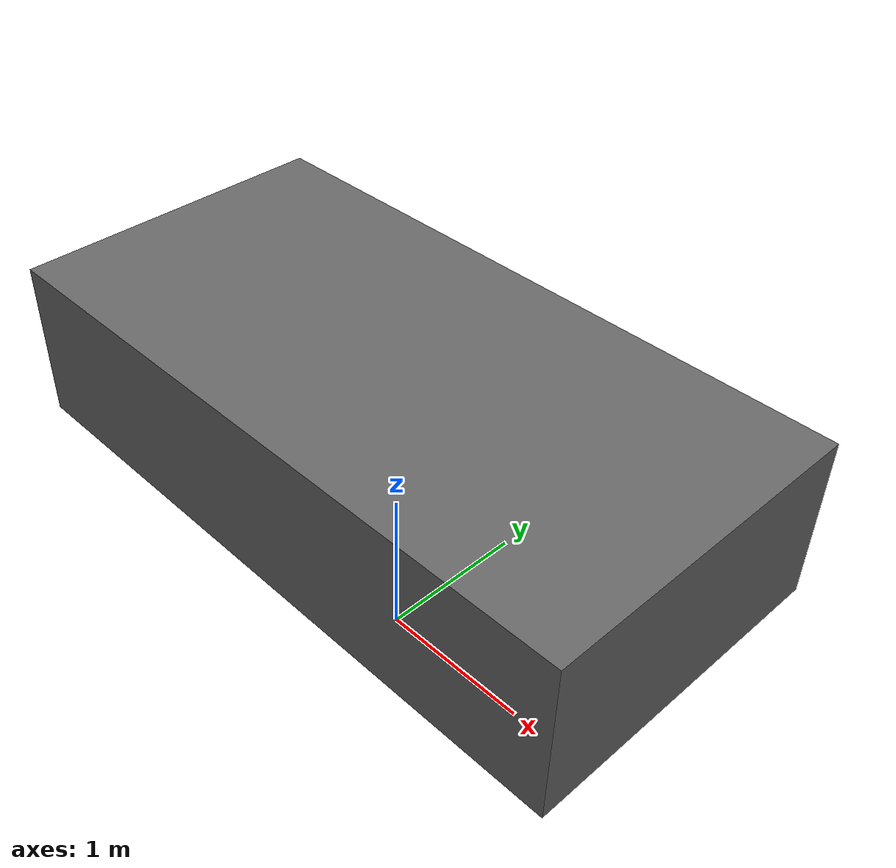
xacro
<?xml version="1.0"?>
<robot xmlns:xacro="http://www.ros.org/wiki/xacro" name="my_robot">
    <xacro:include filename="common_properties.xacro" />
    <xacro:property name="base_length" value="4" />
    <xacro:property name="base_width" value="2" />
    <xacro:property name="base_height" value="1" />
    <xacro:property name="wheel_radius" value="0.1" />
    <xacro:property name="wheel_length" value="0.05" />
  <!-- Base Link -->
    <link name="base_footprint" />
    <link name="base_link">
        <visual>
            <geometry>
                <box size="${base_length} ${base_width} ${base_height}" />
            </geometry>
            <origin xyz="0 0 ${base_height / 2.0}" rpy="0 0 0" />
            <material name="blue" />
        </visual>
        <collision>
            <geometry>
                <box size="${base_length} ${base_width} ${base_height}" />
            </geometry>
            <origin xyz="0 0 ${base_height / 2.0}" rpy="0 0 0" />
        </collision>
        <xacro:box_inertia m="5.0" l="${2*base_length}" w="${2*base_width}" h="${2*base_height}"
                           xyz="0 0 ${base_height / 2.0}" rpy="0 0 0" />
    </link>
    <joint name="base_joint" type="fixed">
        <parent link="base_footprint" />
        <child link="base_link" />
        <origin xyz="0 0 ${wheel_radius+1}" rpy="0 0 0"/>
    </joint>
    <gazebo reference="base_link">
        <material>Gazebo/Blue</material>
    </gazebo>

</robot>

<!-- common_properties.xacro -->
<robot xmlns:xacro="http://www.ros.org/wiki/xacro">

    <material name="blue">
        <color rgba="0.4 0.4 0.4 1" />
    </material>

    <material name="grey">
        <color rgba="0.5 0.5 0.5 1" />
    </material>

    <xacro:macro name="box_inertia" params="m l w h xyz rpy">
        <inertial>
            <origin xyz="${xyz}" rpy="${rpy}" />
            <mass value="${m}" />
            <inertia ixx="${(m/12) * (h*h + l*l)}" ixy="0" ixz="0"
                     iyy="${(m/12) * (w*w + l*l)}" iyz="0"
                     izz="${(m/12) * (w*w + h*h)}" />
        </inertial>
    </xacro:macro>

    <xacro:macro name="cylinder_inertia" params="m r h xyz rpy">
        <inertial>
            <origin xyz="${xyz}" rpy="${rpy}" />
            <mass value="${m}" />
            <inertia ixx="${(m/12) * (3*r*r + h*h)}" ixy="0" ixz="0"
                     iyy="${(m/12) * (3*r*r + h*h)}" iyz="0"
                     izz="${(m/2) * (r*r)}" />
        </inertial>
    </xacro:macro>

    <xacro:macro name="sphere_inertia" params="m r xyz rpy">
        <inertial>
            <origin xyz="${xyz}" rpy="${rpy}" />
            <mass value="${m}" />
            <inertia ixx="${(2/5) * m * r * r}" ixy="0" ixz="0"
                     iyy="${(2/5) * m * r * r}" iyz="0"
                     izz="${(2/5) * m * r * r}" />
        </inertial>
    </xacro:macro>

</robot>
